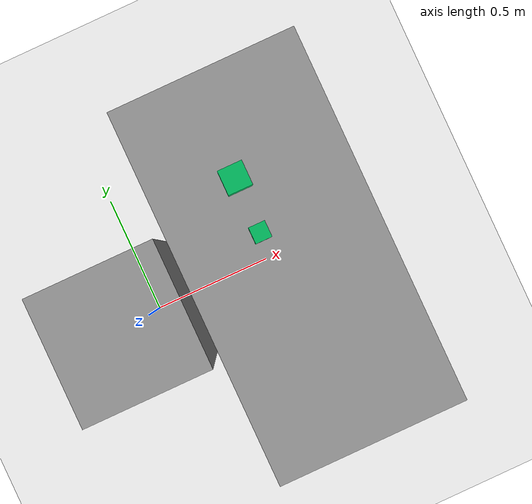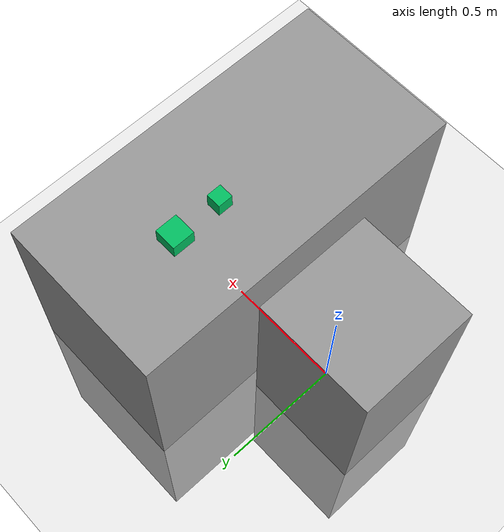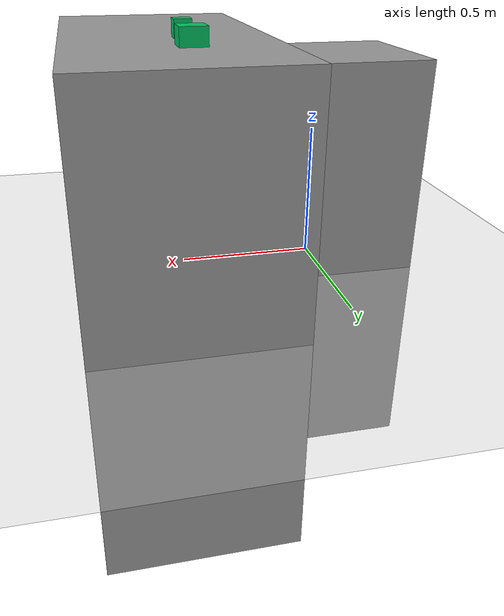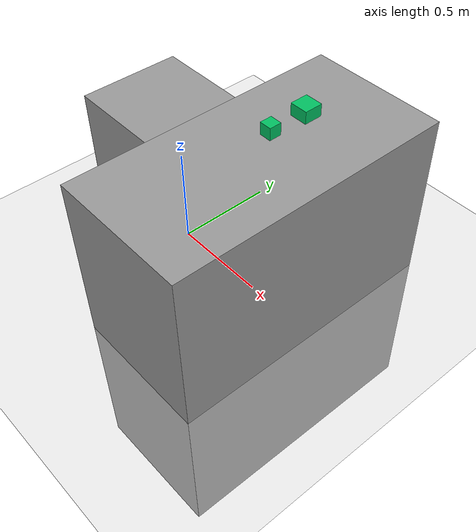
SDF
<?xml version="1.0" ?>
<sdf version="1.4">
  <!-- We use a custom world for the rrbot so that the camera angle is launched correctly -->

  <world name="default">
    <include>
      <uri>model://ground_plane</uri>
    </include>

    <!-- Global light source -->
    <include>
      <uri>model://sun</uri>
    </include>

<model name='table_object'>
      <pose>0.55 -0.011 0.0 0 0 0</pose>
      <link name='table_object_link'>
        <inertial>
          <mass>1</mass>
          <inertia>
            <ixx>1</ixx>
            <ixy>0</ixy>
            <ixz>0</ixz>
            <iyy>1</iyy>
            <iyz>0</iyz>
            <izz>1</izz>
          </inertia>
        </inertial>
        <collision name='collision'>
          <geometry>
            <box>
              <size>0.7 1.4 1.7</size>
            </box>
          </geometry>
          <surface>
            <contact>
              <ode/>
            </contact>
            <bounce/>
            <friction>
              <ode>
                <mu>0.6</mu>
                <mu2>0.6</mu2>
                <fdir1>0.000000 0.000000 0.000000</fdir1>
                <slip1>0.000000</slip1>
                <slip2>0.000000</slip2>
              </ode>
            </friction>
          </surface>
        </collision>
        <visual name='visual'>
          <geometry>
            <box>
              <size>0.7 1.4 1.7</size>
            </box>
          </geometry>
          <material>
            <script>
              <uri>file://media/materials/scripts/gazebo.material</uri>
              <name>Gazebo/Gray</name>
            </script>
          </material>
        </visual>
        <gravity>1</gravity>
      </link>
      <static>1</static>
    </model>

    <model name='unit_box_1'>
      <pose>-0.095 -0.011 0.0 0 0 0</pose>
      <link name='unit_box_link'>
        <inertial>
          <mass>1</mass>
          <inertia>
            <ixx>1</ixx>
            <ixy>0</ixy>
            <ixz>0</ixz>
            <iyy>1</iyy>
            <iyz>0</iyz>
            <izz>1</izz>
          </inertia>
        </inertial>
        <collision name='collision'>
          <geometry>
            <box>
              <size>0.5 0.5 1.55</size>
            </box>
          </geometry>
          <max_contacts>10</max_contacts>
          <surface>
            <contact>
              <ode/>
            </contact>
            <bounce/>
            <friction>
              <ode/>
            </friction>
          </surface>
        </collision>
        <visual name='visual'>
          <geometry>
            <box>
              <size>0.5 0.5 1.55</size>
            </box>
          </geometry>
          <material>
            <script>
              <uri>file://media/materials/scripts/gazebo.material</uri>
              <name>Gazebo/Gray</name>
            </script>
          </material>
        </visual>
        <gravity>1</gravity>
      </link>
      <static>1</static>
    </model>

<model name='obs_0'>
  <pose>0.500305 0.100468 0.882485 3.1415 0.0 3.1415</pose>
  <link name='obs_0_link'>
    <inertial>
      <mass>0.1</mass>
      <inertia>
            <ixx>0.0001000000</ixx>
            <ixy>0.000000</ixy>
            <ixz>0.000000</ixz>
            <iyy>0.000100000</iyy>
            <iyz>0.000000</iyz>
            <izz>0.000100000</izz>
      </inertia>
    </inertial>
    <collision name='collision'>
      <geometry>
        <box>
          <size>0.06 0.06 0.06</size>
        </box>
      </geometry>
      <surface>
        <contact>
          <ode>
            <soft_cfm>0.000000</soft_cfm>
            <soft_erp>0.200000</soft_erp>
            <kp>100000.000000</kp>
            <kd>1.000000</kd>
            <max_vel>0.00007</max_vel>
            <min_depth>0.00001</min_depth>
          </ode>
        </contact>
        <bounce>
          <restitution_coefficient>0</restitution_coefficient>
          <threshold>100000</threshold>
        </bounce>
        <friction>
          <ode>
            <mu>0.6</mu>
            <mu2>0.6</mu2>
            <fdir1>0.000000 0.000000 0.000000</fdir1>
            <slip1>0.000000</slip1>
            <slip2>0.000000</slip2>
          </ode>
        </friction>
      </surface>
      <max_contacts>10</max_contacts>
    </collision>
    <visual name='visual'>
      <geometry>
        <box>
          <size>0.06 0.06 0.06</size>
        </box>
      </geometry>
      <material>
        <ambient>0 0.086  0.043 1</ambient>
        <diffuse>0 0.75 0.38 1</diffuse>
      </material>
    </visual>
    <velocity_decay>
      <linear>0.01</linear>
      <angular>0.001</angular>
    </velocity_decay>
    <self_collide>0</self_collide>
    <kinematic>0</kinematic>
    <gravity>1</gravity>
  </link>
</model>

<model name='obs_fixed'>
  <pose>0.500305 0.300468 0.882485 3.1415 0.0 3.1415</pose>
  <link name='obs_fixed_link'>
    <inertial>
      <mass>0.1</mass>
      <inertia>
            <ixx>0.0001000000</ixx>
            <ixy>0.000000</ixy>
            <ixz>0.000000</ixz>
            <iyy>0.000100000</iyy>
            <iyz>0.000000</iyz>
            <izz>0.000100000</izz>
      </inertia>
    </inertial>
    <collision name='collision'>
      <geometry>
        <box>
          <size>0.09 0.09 0.06</size>
        </box>
      </geometry>
      <surface>
        <bounce>
          <restitution_coefficient>0</restitution_coefficient>
          <threshold>100000</threshold>
        </bounce>
        <contact>
          <ode>
            <soft_cfm>0.000000</soft_cfm>
            <soft_erp>0.200000</soft_erp>
            <kp>100000.000000</kp>
            <kd>1.000000</kd>
            <max_vel>0.00007</max_vel>
            <min_depth>0.00001</min_depth>
          </ode>
        </contact>
        <friction>
          <ode>
            <mu>0.6</mu>
            <mu2>0.6</mu2>
            <fdir1>0.000000 0.000000 0.000000</fdir1>
            <slip1>0.000000</slip1>
            <slip2>0.000000</slip2>
          </ode>
        </friction>
      </surface>
      <max_contacts>10</max_contacts>
    </collision>
    <visual name='visual'>
      <geometry>
        <box>
          <size>0.09 0.09 0.06</size>
        </box>
      </geometry>
      <material>
        <ambient>0 0.086  0.043 1</ambient>
        <diffuse>0 0.75 0.38 1</diffuse>
      </material>
    </visual>
    <velocity_decay>
      <linear>0.01</linear>
      <angular>0.001</angular>
    </velocity_decay>
    <self_collide>0</self_collide>
    <kinematic>0</kinematic>
    <gravity>1</gravity>
  </link>
</model>

  </world>
</sdf>
